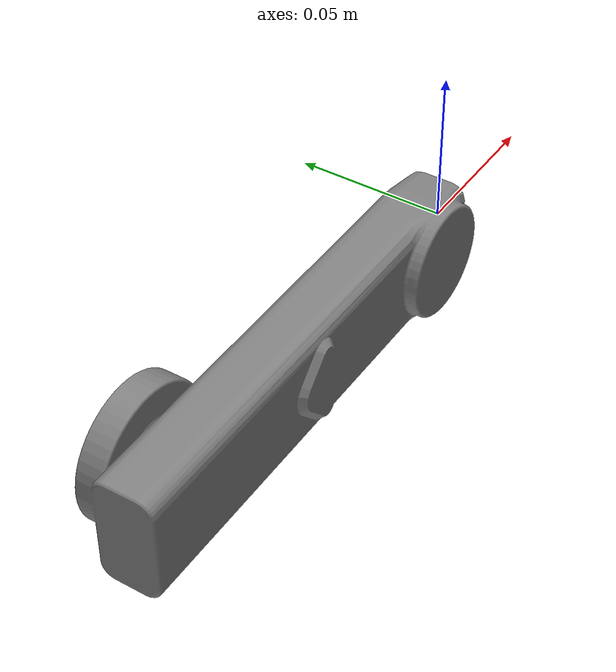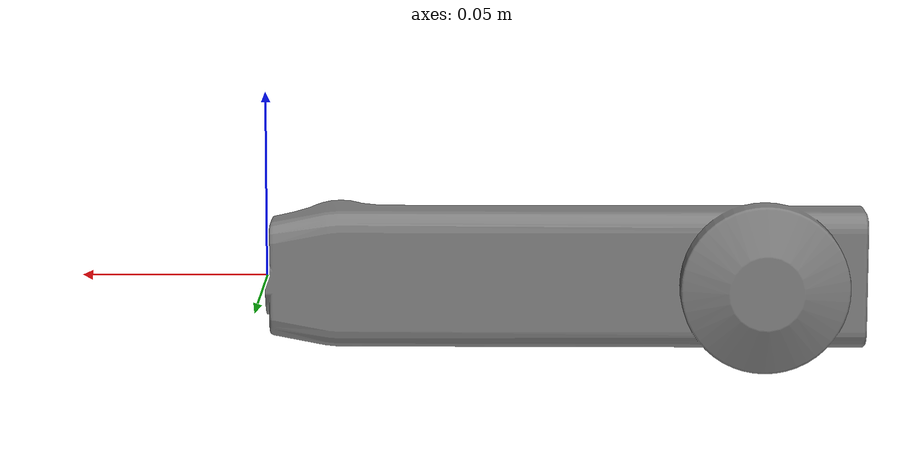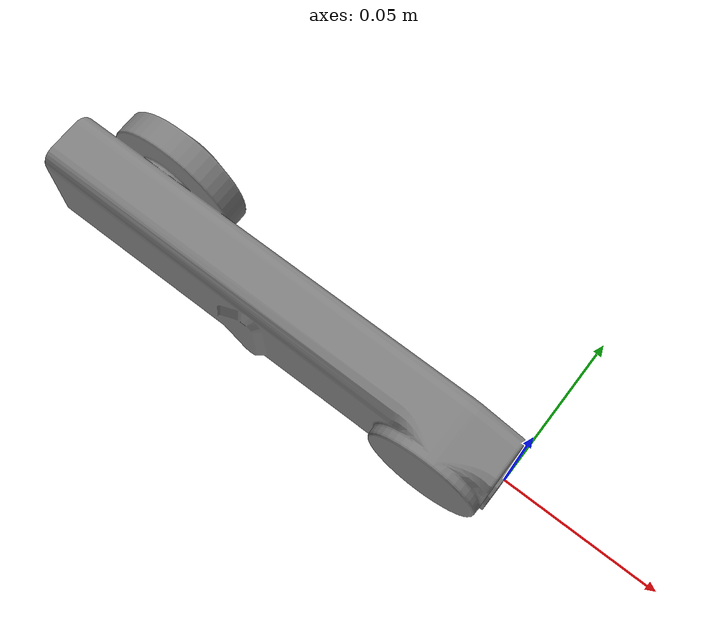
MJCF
<mujoco model="solo12_hip_fe_fr">
  <default>
    <default class="visual">
      <geom group="2" type="mesh" contype="0" conaffinity="0"/>
    </default>
    <default class="collision">
      <geom group="3" type="mesh"/>
    </default>
  </default>
  <asset>
    <mesh file="solo12_hip_fe_fr.obj"/>
    <mesh file="solo12_hip_fe_fr_collision_0.obj"/>
    <mesh file="solo12_hip_fe_fr_collision_1.obj"/>
    <mesh file="solo12_hip_fe_fr_collision_2.obj"/>
    <mesh file="solo12_hip_fe_fr_collision_3.obj"/>
    <mesh file="solo12_hip_fe_fr_collision_4.obj"/>
    <mesh file="solo12_hip_fe_fr_collision_5.obj"/>
    <mesh file="solo12_hip_fe_fr_collision_6.obj"/>
    <mesh file="solo12_hip_fe_fr_collision_7.obj"/>
  </asset>
  <worldbody>
    <body name="solo12_hip_fe_fr">
      <geom mesh="solo12_hip_fe_fr" class="visual"/>
      <geom mesh="solo12_hip_fe_fr_collision_0" class="collision"/>
      <geom mesh="solo12_hip_fe_fr_collision_1" class="collision"/>
      <geom mesh="solo12_hip_fe_fr_collision_2" class="collision"/>
      <geom mesh="solo12_hip_fe_fr_collision_3" class="collision"/>
      <geom mesh="solo12_hip_fe_fr_collision_4" class="collision"/>
      <geom mesh="solo12_hip_fe_fr_collision_5" class="collision"/>
      <geom mesh="solo12_hip_fe_fr_collision_6" class="collision"/>
      <geom mesh="solo12_hip_fe_fr_collision_7" class="collision"/>
    </body>
  </worldbody>
</mujoco>
